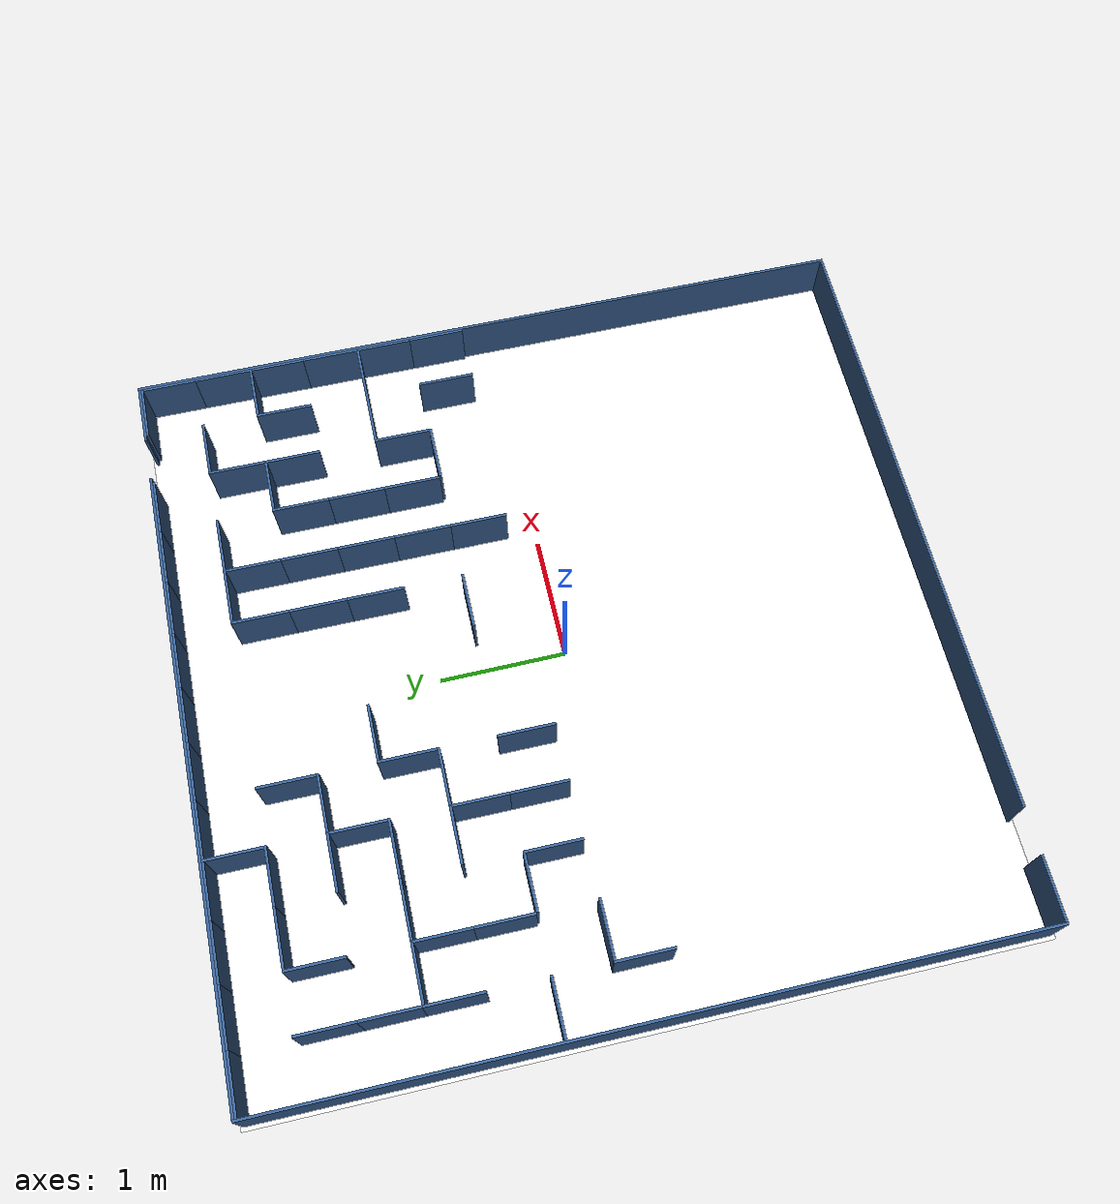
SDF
<sdf version="1.8">
 <world name="maze_world">
  <include><uri>https://fuel.gazebosim.org/1.0/OpenRobotics/models/Sun</uri></include>
  <model name="white_floor">
   <static>true</static>
   <link name="floor_link">
    <collision name="collision">
     <geometry><plane><normal>0 0 1</normal><size>5.95 5.95</size></plane></geometry>
    </collision>
    <visual name="visual">
     <geometry><plane><normal>0 0 1</normal><size>5.95 5.95</size></plane></geometry>
     <material>
      <ambient>0.92 0.92 0.9 1</ambient>
      <diffuse>0.95 0.95 0.93 1</diffuse>
      <specular>0.05 0.05 0.05 1</specular>
     </material>
    </visual>
   </link>
  </model>
  <model name="wall_outer_north_left">
   <static>true</static>
   <link name="link">
    <pose>-0.4275 2.935 0.2 0 0 0</pose>
    <collision name="collision"><geometry><box><size>4.995 0.04 0.4</size></box></geometry></collision>
    <visual name="visual">
     <geometry><box><size>4.995 0.02 0.4</size></box></geometry>
     <material>
      <ambient>0.18 0.32 0.5 1</ambient>
      <diffuse>0.22 0.38 0.58 1</diffuse>
      <specular>0.15 0.15 0.15 1</specular>
     </material>
    </visual>
   </link>
  </model>
  <model name="wall_outer_north_right">
   <static>true</static>
   <link name="link">
    <pose>2.6775 2.935 0.2 0 0 0</pose>
    <collision name="collision"><geometry><box><size>0.495 0.04 0.4</size></box></geometry></collision>
    <visual name="visual">
     <geometry><box><size>0.495 0.02 0.4</size></box></geometry>
     <material>
      <ambient>0.18 0.32 0.5 1</ambient>
      <diffuse>0.22 0.38 0.58 1</diffuse>
      <specular>0.15 0.15 0.15 1</specular>
     </material>
    </visual>
   </link>
  </model>
  <model name="wall_outer_south_left">
   <static>true</static>
   <link name="link">
    <pose>-2.6775 -2.935 0.2 0 0 0</pose>
    <collision name="collision"><geometry><box><size>0.495 0.04 0.4</size></box></geometry></collision>
    <visual name="visual">
     <geometry><box><size>0.495 0.02 0.4</size></box></geometry>
     <material>
      <ambient>0.18 0.32 0.5 1</ambient>
      <diffuse>0.22 0.38 0.58 1</diffuse>
      <specular>0.15 0.15 0.15 1</specular>
     </material>
    </visual>
   </link>
  </model>
  <model name="wall_outer_south_right">
   <static>true</static>
   <link name="link">
    <pose>0.4275 -2.935 0.2 0 0 0</pose>
    <collision name="collision"><geometry><box><size>4.995 0.04 0.4</size></box></geometry></collision>
    <visual name="visual">
     <geometry><box><size>4.995 0.02 0.4</size></box></geometry>
     <material>
      <ambient>0.18 0.32 0.5 1</ambient>
      <diffuse>0.22 0.38 0.58 1</diffuse>
      <specular>0.15 0.15 0.15 1</specular>
     </material>
    </visual>
   </link>
  </model>
  <model name="wall_outer_east">
   <static>true</static>
   <link name="link">
    <pose>2.935 0 0.2 0 0 0</pose>
    <collision name="collision">
     <geometry><box><size>0.04 5.890000000000001 0.4</size></box></geometry>
    </collision>
    <visual name="visual">
     <geometry><box><size>0.02 5.890000000000001 0.4</size></box></geometry>
     <material>
      <ambient>0.18 0.32 0.5 1</ambient>
      <diffuse>0.22 0.38 0.58 1</diffuse>
      <specular>0.15 0.15 0.15 1</specular>
     </material>
    </visual>
   </link>
  </model>
  <model name="wall_outer_west">
   <static>true</static>
   <link name="link">
    <pose>-2.935 0 0.2 0 0 0</pose>
    <collision name="collision">
     <geometry><box><size>0.04 5.890000000000001 0.4</size></box></geometry>
    </collision>
    <visual name="visual">
     <geometry><box><size>0.02 5.890000000000001 0.4</size></box></geometry>
     <material>
      <ambient>0.18 0.32 0.5 1</ambient>
      <diffuse>0.22 0.38 0.58 1</diffuse>
      <specular>0.15 0.15 0.15 1</specular>
     </material>
    </visual>
   </link>
  </model>
  <model name="wall_h_0_0">
   <static>true</static>
   <link name="link">
    <pose>-2.7 2.9150000000000005 0.2 0 0 0</pose>
    <collision name="collision"><geometry><box><size>0.45 0.04 0.4</size></box></geometry></collision>
    <visual name="visual">
     <geometry><box><size>0.45 0.02 0.4</size></box></geometry>
     <material>
      <ambient>0.18 0.32 0.5 1</ambient>
      <diffuse>0.22 0.38 0.58 1</diffuse>
      <specular>0.15 0.15 0.15 1</specular>
     </material>
    </visual>
   </link>
  </model>
  <model name="wall_h_0_1">
   <static>true</static>
   <link name="link">
    <pose>-2.25 2.9150000000000005 0.2 0 0 0</pose>
    <collision name="collision"><geometry><box><size>0.45 0.04 0.4</size></box></geometry></collision>
    <visual name="visual">
     <geometry><box><size>0.45 0.02 0.4</size></box></geometry>
     <material>
      <ambient>0.18 0.32 0.5 1</ambient>
      <diffuse>0.22 0.38 0.58 1</diffuse>
      <specular>0.15 0.15 0.15 1</specular>
     </material>
    </visual>
   </link>
  </model>
  <model name="wall_h_0_2">
   <static>true</static>
   <link name="link">
    <pose>-1.8000000000000003 2.9150000000000005 0.2 0 0 0</pose>
    <collision name="collision"><geometry><box><size>0.45 0.04 0.4</size></box></geometry></collision>
    <visual name="visual">
     <geometry><box><size>0.45 0.02 0.4</size></box></geometry>
     <material>
      <ambient>0.18 0.32 0.5 1</ambient>
      <diffuse>0.22 0.38 0.58 1</diffuse>
      <specular>0.15 0.15 0.15 1</specular>
     </material>
    </visual>
   </link>
  </model>
  <model name="wall_h_0_3">
   <static>true</static>
   <link name="link">
    <pose>-1.3500000000000003 2.9150000000000005 0.2 0 0 0</pose>
    <collision name="collision"><geometry><box><size>0.45 0.04 0.4</size></box></geometry></collision>
    <visual name="visual">
     <geometry><box><size>0.45 0.02 0.4</size></box></geometry>
     <material>
      <ambient>0.18 0.32 0.5 1</ambient>
      <diffuse>0.22 0.38 0.58 1</diffuse>
      <specular>0.15 0.15 0.15 1</specular>
     </material>
    </visual>
   </link>
  </model>
  <model name="wall_v_0_3">
   <static>true</static>
   <link name="link">
    <pose>-1.1350000000000002 2.7 0.2 0 0 0</pose>
    <collision name="collision"><geometry><box><size>0.04 0.45 0.4</size></box></geometry></collision>
    <visual name="visual">
     <geometry><box><size>0.02 0.45 0.4</size></box></geometry>
     <material>
      <ambient>0.18 0.32 0.5 1</ambient>
      <diffuse>0.22 0.38 0.58 1</diffuse>
      <specular>0.15 0.15 0.15 1</specular>
     </material>
    </visual>
   </link>
  </model>
  <model name="wall_h_0_4">
   <static>true</static>
   <link name="link">
    <pose>-0.9000000000000004 2.9150000000000005 0.2 0 0 0</pose>
    <collision name="collision"><geometry><box><size>0.45 0.04 0.4</size></box></geometry></collision>
    <visual name="visual">
     <geometry><box><size>0.45 0.02 0.4</size></box></geometry>
     <material>
      <ambient>0.18 0.32 0.5 1</ambient>
      <diffuse>0.22 0.38 0.58 1</diffuse>
      <specular>0.15 0.15 0.15 1</specular>
     </material>
    </visual>
   </link>
  </model>
  <model name="wall_h_0_5">
   <static>true</static>
   <link name="link">
    <pose>-0.4500000000000002 2.9150000000000005 0.2 0 0 0</pose>
    <collision name="collision"><geometry><box><size>0.45 0.04 0.4</size></box></geometry></collision>
    <visual name="visual">
     <geometry><box><size>0.45 0.02 0.4</size></box></geometry>
     <material>
      <ambient>0.18 0.32 0.5 1</ambient>
      <diffuse>0.22 0.38 0.58 1</diffuse>
      <specular>0.15 0.15 0.15 1</specular>
     </material>
    </visual>
   </link>
  </model>
  <model name="wall_h_0_6">
   <static>true</static>
   <link name="link">
    <pose>0.0 2.9150000000000005 0.2 0 0 0</pose>
    <collision name="collision"><geometry><box><size>0.45 0.04 0.4</size></box></geometry></collision>
    <visual name="visual">
     <geometry><box><size>0.45 0.02 0.4</size></box></geometry>
     <material>
      <ambient>0.18 0.32 0.5 1</ambient>
      <diffuse>0.22 0.38 0.58 1</diffuse>
      <specular>0.15 0.15 0.15 1</specular>
     </material>
    </visual>
   </link>
  </model>
  <model name="wall_h_0_7">
   <static>true</static>
   <link name="link">
    <pose>0.44999999999999973 2.9150000000000005 0.2 0 0 0</pose>
    <collision name="collision"><geometry><box><size>0.45 0.04 0.4</size></box></geometry></collision>
    <visual name="visual">
     <geometry><box><size>0.45 0.02 0.4</size></box></geometry>
     <material>
      <ambient>0.18 0.32 0.5 1</ambient>
      <diffuse>0.22 0.38 0.58 1</diffuse>
      <specular>0.15 0.15 0.15 1</specular>
     </material>
    </visual>
   </link>
  </model>
  <model name="wall_h_0_8">
   <static>true</static>
   <link name="link">
    <pose>0.8999999999999999 2.9150000000000005 0.2 0 0 0</pose>
    <collision name="collision"><geometry><box><size>0.45 0.04 0.4</size></box></geometry></collision>
    <visual name="visual">
     <geometry><box><size>0.45 0.02 0.4</size></box></geometry>
     <material>
      <ambient>0.18 0.32 0.5 1</ambient>
      <diffuse>0.22 0.38 0.58 1</diffuse>
      <specular>0.15 0.15 0.15 1</specular>
     </material>
    </visual>
   </link>
  </model>
  <model name="wall_h_0_9">
   <static>true</static>
   <link name="link">
    <pose>1.35 2.9150000000000005 0.2 0 0 0</pose>
    <collision name="collision"><geometry><box><size>0.45 0.04 0.4</size></box></geometry></collision>
    <visual name="visual">
     <geometry><box><size>0.45 0.02 0.4</size></box></geometry>
     <material>
      <ambient>0.18 0.32 0.5 1</ambient>
      <diffuse>0.22 0.38 0.58 1</diffuse>
      <specular>0.15 0.15 0.15 1</specular>
     </material>
    </visual>
   </link>
  </model>
  <model name="wall_h_0_10">
   <static>true</static>
   <link name="link">
    <pose>1.8000000000000003 2.9150000000000005 0.2 0 0 0</pose>
    <collision name="collision"><geometry><box><size>0.45 0.04 0.4</size></box></geometry></collision>
    <visual name="visual">
     <geometry><box><size>0.45 0.02 0.4</size></box></geometry>
     <material>
      <ambient>0.18 0.32 0.5 1</ambient>
      <diffuse>0.22 0.38 0.58 1</diffuse>
      <specular>0.15 0.15 0.15 1</specular>
     </material>
    </visual>
   </link>
  </model>
  <model name="wall_h_0_12">
   <static>true</static>
   <link name="link">
    <pose>2.6999999999999997 2.9150000000000005 0.2 0 0 0</pose>
    <collision name="collision"><geometry><box><size>0.45 0.04 0.4</size></box></geometry></collision>
    <visual name="visual">
     <geometry><box><size>0.45 0.02 0.4</size></box></geometry>
     <material>
      <ambient>0.18 0.32 0.5 1</ambient>
      <diffuse>0.22 0.38 0.58 1</diffuse>
      <specular>0.15 0.15 0.15 1</specular>
     </material>
    </visual>
   </link>
  </model>
  <model name="wall_v_0_12">
   <static>true</static>
   <link name="link">
    <pose>2.915 2.7 0.2 0 0 0</pose>
    <collision name="collision"><geometry><box><size>0.04 0.45 0.4</size></box></geometry></collision>
    <visual name="visual">
     <geometry><box><size>0.02 0.45 0.4</size></box></geometry>
     <material>
      <ambient>0.18 0.32 0.5 1</ambient>
      <diffuse>0.22 0.38 0.58 1</diffuse>
      <specular>0.15 0.15 0.15 1</specular>
     </material>
    </visual>
   </link>
  </model>
  <model name="wall_v_1_0">
   <static>true</static>
   <link name="link">
    <pose>-2.485 2.25 0.2 0 0 0</pose>
    <collision name="collision"><geometry><box><size>0.04 0.45 0.4</size></box></geometry></collision>
    <visual name="visual">
     <geometry><box><size>0.02 0.45 0.4</size></box></geometry>
     <material>
      <ambient>0.18 0.32 0.5 1</ambient>
      <diffuse>0.22 0.38 0.58 1</diffuse>
      <specular>0.15 0.15 0.15 1</specular>
     </material>
    </visual>
   </link>
  </model>
  <model name="wall_v_1_1">
   <static>true</static>
   <link name="link">
    <pose>-2.0349999999999997 2.25 0.2 0 0 0</pose>
    <collision name="collision"><geometry><box><size>0.04 0.45 0.4</size></box></geometry></collision>
    <visual name="visual">
     <geometry><box><size>0.02 0.45 0.4</size></box></geometry>
     <material>
      <ambient>0.18 0.32 0.5 1</ambient>
      <diffuse>0.22 0.38 0.58 1</diffuse>
      <specular>0.15 0.15 0.15 1</specular>
     </material>
    </visual>
   </link>
  </model>
  <model name="wall_h_1_2">
   <static>true</static>
   <link name="link">
    <pose>-1.8000000000000003 2.4650000000000003 0.2 0 0 0</pose>
    <collision name="collision"><geometry><box><size>0.45 0.04 0.4</size></box></geometry></collision>
    <visual name="visual">
     <geometry><box><size>0.45 0.02 0.4</size></box></geometry>
     <material>
      <ambient>0.18 0.32 0.5 1</ambient>
      <diffuse>0.22 0.38 0.58 1</diffuse>
      <specular>0.15 0.15 0.15 1</specular>
     </material>
    </visual>
   </link>
  </model>
  <model name="wall_h_1_3">
   <static>true</static>
   <link name="link">
    <pose>-1.3500000000000003 2.4650000000000003 0.2 0 0 0</pose>
    <collision name="collision"><geometry><box><size>0.45 0.04 0.4</size></box></geometry></collision>
    <visual name="visual">
     <geometry><box><size>0.45 0.02 0.4</size></box></geometry>
     <material>
      <ambient>0.18 0.32 0.5 1</ambient>
      <diffuse>0.22 0.38 0.58 1</diffuse>
      <specular>0.15 0.15 0.15 1</specular>
     </material>
    </visual>
   </link>
  </model>
  <model name="wall_v_1_4">
   <static>true</static>
   <link name="link">
    <pose>-0.6850000000000004 2.25 0.2 0 0 0</pose>
    <collision name="collision"><geometry><box><size>0.04 0.45 0.4</size></box></geometry></collision>
    <visual name="visual">
     <geometry><box><size>0.02 0.45 0.4</size></box></geometry>
     <material>
      <ambient>0.18 0.32 0.5 1</ambient>
      <diffuse>0.22 0.38 0.58 1</diffuse>
      <specular>0.15 0.15 0.15 1</specular>
     </material>
    </visual>
   </link>
  </model>
  <model name="wall_v_1_7">
   <static>true</static>
   <link name="link">
    <pose>0.6649999999999997 2.25 0.2 0 0 0</pose>
    <collision name="collision"><geometry><box><size>0.04 0.45 0.4</size></box></geometry></collision>
    <visual name="visual">
     <geometry><box><size>0.02 0.45 0.4</size></box></geometry>
     <material>
      <ambient>0.18 0.32 0.5 1</ambient>
      <diffuse>0.22 0.38 0.58 1</diffuse>
      <specular>0.15 0.15 0.15 1</specular>
     </material>
    </visual>
   </link>
  </model>
  <model name="wall_h_1_8">
   <static>true</static>
   <link name="link">
    <pose>0.8999999999999999 2.4650000000000003 0.2 0 0 0</pose>
    <collision name="collision"><geometry><box><size>0.45 0.04 0.4</size></box></geometry></collision>
    <visual name="visual">
     <geometry><box><size>0.45 0.02 0.4</size></box></geometry>
     <material>
      <ambient>0.18 0.32 0.5 1</ambient>
      <diffuse>0.22 0.38 0.58 1</diffuse>
      <specular>0.15 0.15 0.15 1</specular>
     </material>
    </visual>
   </link>
  </model>
  <model name="wall_v_1_8">
   <static>true</static>
   <link name="link">
    <pose>1.115 2.25 0.2 0 0 0</pose>
    <collision name="collision"><geometry><box><size>0.04 0.45 0.4</size></box></geometry></collision>
    <visual name="visual">
     <geometry><box><size>0.02 0.45 0.4</size></box></geometry>
     <material>
      <ambient>0.18 0.32 0.5 1</ambient>
      <diffuse>0.22 0.38 0.58 1</diffuse>
      <specular>0.15 0.15 0.15 1</specular>
     </material>
    </visual>
   </link>
  </model>
  <model name="wall_h_1_9">
   <static>true</static>
   <link name="link">
    <pose>1.35 2.4650000000000003 0.2 0 0 0</pose>
    <collision name="collision"><geometry><box><size>0.45 0.04 0.4</size></box></geometry></collision>
    <visual name="visual">
     <geometry><box><size>0.45 0.02 0.4</size></box></geometry>
     <material>
      <ambient>0.18 0.32 0.5 1</ambient>
      <diffuse>0.22 0.38 0.58 1</diffuse>
      <specular>0.15 0.15 0.15 1</specular>
     </material>
    </visual>
   </link>
  </model>
  <model name="wall_v_1_10">
   <static>true</static>
   <link name="link">
    <pose>2.0150000000000006 2.25 0.2 0 0 0</pose>
    <collision name="collision"><geometry><box><size>0.04 0.45 0.4</size></box></geometry></collision>
    <visual name="visual">
     <geometry><box><size>0.02 0.45 0.4</size></box></geometry>
     <material>
      <ambient>0.18 0.32 0.5 1</ambient>
      <diffuse>0.22 0.38 0.58 1</diffuse>
      <specular>0.15 0.15 0.15 1</specular>
     </material>
    </visual>
   </link>
  </model>
  <model name="wall_h_1_11">
   <static>true</static>
   <link name="link">
    <pose>2.2499999999999996 2.4650000000000003 0.2 0 0 0</pose>
    <collision name="collision"><geometry><box><size>0.45 0.04 0.4</size></box></geometry></collision>
    <visual name="visual">
     <geometry><box><size>0.45 0.02 0.4</size></box></geometry>
     <material>
      <ambient>0.18 0.32 0.5 1</ambient>
      <diffuse>0.22 0.38 0.58 1</diffuse>
      <specular>0.15 0.15 0.15 1</specular>
     </material>
    </visual>
   </link>
  </model>
  <model name="wall_v_1_12">
   <static>true</static>
   <link name="link">
    <pose>2.915 2.25 0.2 0 0 0</pose>
    <collision name="collision"><geometry><box><size>0.04 0.45 0.4</size></box></geometry></collision>
    <visual name="visual">
     <geometry><box><size>0.02 0.45 0.4</size></box></geometry>
     <material>
      <ambient>0.18 0.32 0.5 1</ambient>
      <diffuse>0.22 0.38 0.58 1</diffuse>
      <specular>0.15 0.15 0.15 1</specular>
     </material>
    </visual>
   </link>
  </model>
  <model name="wall_v_2_0">
   <static>true</static>
   <link name="link">
    <pose>-2.485 1.8000000000000003 0.2 0 0 0</pose>
    <collision name="collision"><geometry><box><size>0.04 0.45 0.4</size></box></geometry></collision>
    <visual name="visual">
     <geometry><box><size>0.02 0.45 0.4</size></box></geometry>
     <material>
      <ambient>0.18 0.32 0.5 1</ambient>
      <diffuse>0.22 0.38 0.58 1</diffuse>
      <specular>0.15 0.15 0.15 1</specular>
     </material>
    </visual>
   </link>
  </model>
  <model name="wall_h_2_3">
   <static>true</static>
   <link name="link">
    <pose>-1.3500000000000003 2.0150000000000006 0.2 0 0 0</pose>
    <collision name="collision"><geometry><box><size>0.45 0.04 0.4</size></box></geometry></collision>
    <visual name="visual">
     <geometry><box><size>0.45 0.02 0.4</size></box></geometry>
     <material>
      <ambient>0.18 0.32 0.5 1</ambient>
      <diffuse>0.22 0.38 0.58 1</diffuse>
      <specular>0.15 0.15 0.15 1</specular>
     </material>
    </visual>
   </link>
  </model>
  <model name="wall_v_2_3">
   <static>true</static>
   <link name="link">
    <pose>-1.1350000000000002 1.8000000000000003 0.2 0 0 0</pose>
    <collision name="collision"><geometry><box><size>0.04 0.45 0.4</size></box></geometry></collision>
    <visual name="visual">
     <geometry><box><size>0.02 0.45 0.4</size></box></geometry>
     <material>
      <ambient>0.18 0.32 0.5 1</ambient>
      <diffuse>0.22 0.38 0.58 1</diffuse>
      <specular>0.15 0.15 0.15 1</specular>
     </material>
    </visual>
   </link>
  </model>
  <model name="wall_h_2_4">
   <static>true</static>
   <link name="link">
    <pose>-0.9000000000000004 2.0150000000000006 0.2 0 0 0</pose>
    <collision name="collision"><geometry><box><size>0.45 0.04 0.4</size></box></geometry></collision>
    <visual name="visual">
     <geometry><box><size>0.45 0.02 0.4</size></box></geometry>
     <material>
      <ambient>0.18 0.32 0.5 1</ambient>
      <diffuse>0.22 0.38 0.58 1</diffuse>
      <specular>0.15 0.15 0.15 1</specular>
     </material>
    </visual>
   </link>
  </model>
  <model name="wall_v_2_7">
   <static>true</static>
   <link name="link">
    <pose>0.6649999999999997 1.8000000000000003 0.2 0 0 0</pose>
    <collision name="collision"><geometry><box><size>0.04 0.45 0.4</size></box></geometry></collision>
    <visual name="visual">
     <geometry><box><size>0.02 0.45 0.4</size></box></geometry>
     <material>
      <ambient>0.18 0.32 0.5 1</ambient>
      <diffuse>0.22 0.38 0.58 1</diffuse>
      <specular>0.15 0.15 0.15 1</specular>
     </material>
    </visual>
   </link>
  </model>
  <model name="wall_v_2_8">
   <static>true</static>
   <link name="link">
    <pose>1.115 1.8000000000000003 0.2 0 0 0</pose>
    <collision name="collision"><geometry><box><size>0.04 0.45 0.4</size></box></geometry></collision>
    <visual name="visual">
     <geometry><box><size>0.02 0.45 0.4</size></box></geometry>
     <material>
      <ambient>0.18 0.32 0.5 1</ambient>
      <diffuse>0.22 0.38 0.58 1</diffuse>
      <specular>0.15 0.15 0.15 1</specular>
     </material>
    </visual>
   </link>
  </model>
  <model name="wall_v_2_9">
   <static>true</static>
   <link name="link">
    <pose>1.5650000000000002 1.8000000000000003 0.2 0 0 0</pose>
    <collision name="collision"><geometry><box><size>0.04 0.45 0.4</size></box></geometry></collision>
    <visual name="visual">
     <geometry><box><size>0.02 0.45 0.4</size></box></geometry>
     <material>
      <ambient>0.18 0.32 0.5 1</ambient>
      <diffuse>0.22 0.38 0.58 1</diffuse>
      <specular>0.15 0.15 0.15 1</specular>
     </material>
    </visual>
   </link>
  </model>
  <model name="wall_h_2_10">
   <static>true</static>
   <link name="link">
    <pose>1.8000000000000003 2.0150000000000006 0.2 0 0 0</pose>
    <collision name="collision"><geometry><box><size>0.45 0.04 0.4</size></box></geometry></collision>
    <visual name="visual">
     <geometry><box><size>0.45 0.02 0.4</size></box></geometry>
     <material>
      <ambient>0.18 0.32 0.5 1</ambient>
      <diffuse>0.22 0.38 0.58 1</diffuse>
      <specular>0.15 0.15 0.15 1</specular>
     </material>
    </visual>
   </link>
  </model>
  <model name="wall_v_2_10">
   <static>true</static>
   <link name="link">
    <pose>2.0150000000000006 1.8000000000000003 0.2 0 0 0</pose>
    <collision name="collision"><geometry><box><size>0.04 0.45 0.4</size></box></geometry></collision>
    <visual name="visual">
     <geometry><box><size>0.02 0.45 0.4</size></box></geometry>
     <material>
      <ambient>0.18 0.32 0.5 1</ambient>
      <diffuse>0.22 0.38 0.58 1</diffuse>
      <specular>0.15 0.15 0.15 1</specular>
     </material>
    </visual>
   </link>
  </model>
  <model name="wall_v_2_11">
   <static>true</static>
   <link name="link">
    <pose>2.465 1.8000000000000003 0.2 0 0 0</pose>
    <collision name="collision"><geometry><box><size>0.04 0.45 0.4</size></box></geometry></collision>
    <visual name="visual">
     <geometry><box><size>0.02 0.45 0.4</size></box></geometry>
     <material>
      <ambient>0.18 0.32 0.5 1</ambient>
      <diffuse>0.22 0.38 0.58 1</diffuse>
      <specular>0.15 0.15 0.15 1</specular>
     </material>
    </visual>
   </link>
  </model>
  <model name="wall_h_2_12">
   <static>true</static>
   <link name="link">
    <pose>2.6999999999999997 2.0150000000000006 0.2 0 0 0</pose>
    <collision name="collision"><geometry><box><size>0.45 0.04 0.4</size></box></geometry></collision>
    <visual name="visual">
     <geometry><box><size>0.45 0.02 0.4</size></box></geometry>
     <material>
      <ambient>0.18 0.32 0.5 1</ambient>
      <diffuse>0.22 0.38 0.58 1</diffuse>
      <specular>0.15 0.15 0.15 1</specular>
     </material>
    </visual>
   </link>
  </model>
  <model name="wall_v_2_12">
   <static>true</static>
   <link name="link">
    <pose>2.915 1.8000000000000003 0.2 0 0 0</pose>
    <collision name="collision"><geometry><box><size>0.04 0.45 0.4</size></box></geometry></collision>
    <visual name="visual">
     <geometry><box><size>0.02 0.45 0.4</size></box></geometry>
     <material>
      <ambient>0.18 0.32 0.5 1</ambient>
      <diffuse>0.22 0.38 0.58 1</diffuse>
      <specular>0.15 0.15 0.15 1</specular>
     </material>
    </visual>
   </link>
  </model>
  <model name="wall_v_3_0">
   <static>true</static>
   <link name="link">
    <pose>-2.485 1.3500000000000003 0.2 0 0 0</pose>
    <collision name="collision"><geometry><box><size>0.04 0.45 0.4</size></box></geometry></collision>
    <visual name="visual">
     <geometry><box><size>0.02 0.45 0.4</size></box></geometry>
     <material>
      <ambient>0.18 0.32 0.5 1</ambient>
      <diffuse>0.22 0.38 0.58 1</diffuse>
      <specular>0.15 0.15 0.15 1</specular>
     </material>
    </visual>
   </link>
  </model>
  <model name="wall_h_3_1">
   <static>true</static>
   <link name="link">
    <pose>-2.25 1.5650000000000004 0.2 0 0 0</pose>
    <collision name="collision"><geometry><box><size>0.45 0.04 0.4</size></box></geometry></collision>
    <visual name="visual">
     <geometry><box><size>0.45 0.02 0.4</size></box></geometry>
     <material>
      <ambient>0.18 0.32 0.5 1</ambient>
      <diffuse>0.22 0.38 0.58 1</diffuse>
      <specular>0.15 0.15 0.15 1</specular>
     </material>
    </visual>
   </link>
  </model>
  <model name="wall_v_3_1">
   <static>true</static>
   <link name="link">
    <pose>-2.0349999999999997 1.3500000000000003 0.2 0 0 0</pose>
    <collision name="collision"><geometry><box><size>0.04 0.45 0.4</size></box></geometry></collision>
    <visual name="visual">
     <geometry><box><size>0.02 0.45 0.4</size></box></geometry>
     <material>
      <ambient>0.18 0.32 0.5 1</ambient>
      <diffuse>0.22 0.38 0.58 1</diffuse>
      <specular>0.15 0.15 0.15 1</specular>
     </material>
    </visual>
   </link>
  </model>
  <model name="wall_h_3_2">
   <static>true</static>
   <link name="link">
    <pose>-1.8000000000000003 1.5650000000000004 0.2 0 0 0</pose>
    <collision name="collision"><geometry><box><size>0.45 0.04 0.4</size></box></geometry></collision>
    <visual name="visual">
     <geometry><box><size>0.45 0.02 0.4</size></box></geometry>
     <material>
      <ambient>0.18 0.32 0.5 1</ambient>
      <diffuse>0.22 0.38 0.58 1</diffuse>
      <specular>0.15 0.15 0.15 1</specular>
     </material>
    </visual>
   </link>
  </model>
  <model name="wall_h_3_3">
   <static>true</static>
   <link name="link">
    <pose>-1.3500000000000003 1.5650000000000004 0.2 0 0 0</pose>
    <collision name="collision"><geometry><box><size>0.45 0.04 0.4</size></box></geometry></collision>
    <visual name="visual">
     <geometry><box><size>0.45 0.02 0.4</size></box></geometry>
     <material>
      <ambient>0.18 0.32 0.5 1</ambient>
      <diffuse>0.22 0.38 0.58 1</diffuse>
      <specular>0.15 0.15 0.15 1</specular>
     </material>
    </visual>
   </link>
  </model>
  <model name="wall_v_3_4">
   <static>true</static>
   <link name="link">
    <pose>-0.6850000000000004 1.3500000000000003 0.2 0 0 0</pose>
    <collision name="collision"><geometry><box><size>0.04 0.45 0.4</size></box></geometry></collision>
    <visual name="visual">
     <geometry><box><size>0.02 0.45 0.4</size></box></geometry>
     <material>
      <ambient>0.18 0.32 0.5 1</ambient>
      <diffuse>0.22 0.38 0.58 1</diffuse>
      <specular>0.15 0.15 0.15 1</specular>
     </material>
    </visual>
   </link>
  </model>
  <model name="wall_h_3_5">
   <static>true</static>
   <link name="link">
    <pose>-0.4500000000000002 1.5650000000000004 0.2 0 0 0</pose>
    <collision name="collision"><geometry><box><size>0.45 0.04 0.4</size></box></geometry></collision>
    <visual name="visual">
     <geometry><box><size>0.45 0.02 0.4</size></box></geometry>
     <material>
      <ambient>0.18 0.32 0.5 1</ambient>
      <diffuse>0.22 0.38 0.58 1</diffuse>
      <specular>0.15 0.15 0.15 1</specular>
     </material>
    </visual>
   </link>
  </model>
  <model name="wall_v_3_7">
   <static>true</static>
   <link name="link">
    <pose>0.6649999999999997 1.3500000000000003 0.2 0 0 0</pose>
    <collision name="collision"><geometry><box><size>0.04 0.45 0.4</size></box></geometry></collision>
    <visual name="visual">
     <geometry><box><size>0.02 0.45 0.4</size></box></geometry>
     <material>
      <ambient>0.18 0.32 0.5 1</ambient>
      <diffuse>0.22 0.38 0.58 1</diffuse>
      <specular>0.15 0.15 0.15 1</specular>
     </material>
    </visual>
   </link>
  </model>
  <model name="wall_v_3_8">
   <static>true</static>
   <link name="link">
    <pose>1.115 1.3500000000000003 0.2 0 0 0</pose>
    <collision name="collision"><geometry><box><size>0.04 0.45 0.4</size></box></geometry></collision>
    <visual name="visual">
     <geometry><box><size>0.02 0.45 0.4</size></box></geometry>
     <material>
      <ambient>0.18 0.32 0.5 1</ambient>
      <diffuse>0.22 0.38 0.58 1</diffuse>
      <specular>0.15 0.15 0.15 1</specular>
     </material>
    </visual>
   </link>
  </model>
  <model name="wall_v_3_9">
   <static>true</static>
   <link name="link">
    <pose>1.5650000000000002 1.3500000000000003 0.2 0 0 0</pose>
    <collision name="collision"><geometry><box><size>0.04 0.45 0.4</size></box></geometry></collision>
    <visual name="visual">
     <geometry><box><size>0.02 0.45 0.4</size></box></geometry>
     <material>
      <ambient>0.18 0.32 0.5 1</ambient>
      <diffuse>0.22 0.38 0.58 1</diffuse>
      <specular>0.15 0.15 0.15 1</specular>
     </material>
    </visual>
   </link>
  </model>
  <model name="wall_v_3_12">
   <static>true</static>
   <link name="link">
    <pose>2.915 1.3500000000000003 0.2 0 0 0</pose>
    <collision name="collision"><geometry><box><size>0.04 0.45 0.4</size></box></geometry></collision>
    <visual name="visual">
     <geometry><box><size>0.02 0.45 0.4</size></box></geometry>
     <material>
      <ambient>0.18 0.32 0.5 1</ambient>
      <diffuse>0.22 0.38 0.58 1</diffuse>
      <specular>0.15 0.15 0.15 1</specular>
     </material>
    </visual>
   </link>
  </model>
  <model name="wall_v_4_1">
   <static>true</static>
   <link name="link">
    <pose>-2.0349999999999997 0.9000000000000004 0.2 0 0 0</pose>
    <collision name="collision"><geometry><box><size>0.04 0.45 0.4</size></box></geometry></collision>
    <visual name="visual">
     <geometry><box><size>0.02 0.45 0.4</size></box></geometry>
     <material>
      <ambient>0.18 0.32 0.5 1</ambient>
      <diffuse>0.22 0.38 0.58 1</diffuse>
      <specular>0.15 0.15 0.15 1</specular>
     </material>
    </visual>
   </link>
  </model>
  <model name="wall_h_4_3">
   <static>true</static>
   <link name="link">
    <pose>-1.3500000000000003 1.1150000000000004 0.2 0 0 0</pose>
    <collision name="collision"><geometry><box><size>0.45 0.04 0.4</size></box></geometry></collision>
    <visual name="visual">
     <geometry><box><size>0.45 0.02 0.4</size></box></geometry>
     <material>
      <ambient>0.18 0.32 0.5 1</ambient>
      <diffuse>0.22 0.38 0.58 1</diffuse>
      <specular>0.15 0.15 0.15 1</specular>
     </material>
    </visual>
   </link>
  </model>
  <model name="wall_v_4_3">
   <static>true</static>
   <link name="link">
    <pose>-1.1350000000000002 0.9000000000000004 0.2 0 0 0</pose>
    <collision name="collision"><geometry><box><size>0.04 0.45 0.4</size></box></geometry></collision>
    <visual name="visual">
     <geometry><box><size>0.02 0.45 0.4</size></box></geometry>
     <material>
      <ambient>0.18 0.32 0.5 1</ambient>
      <diffuse>0.22 0.38 0.58 1</diffuse>
      <specular>0.15 0.15 0.15 1</specular>
     </material>
    </visual>
   </link>
  </model>
  <model name="wall_h_4_4">
   <static>true</static>
   <link name="link">
    <pose>-0.9000000000000004 1.1150000000000004 0.2 0 0 0</pose>
    <collision name="collision"><geometry><box><size>0.45 0.04 0.4</size></box></geometry></collision>
    <visual name="visual">
     <geometry><box><size>0.45 0.02 0.4</size></box></geometry>
     <material>
      <ambient>0.18 0.32 0.5 1</ambient>
      <diffuse>0.22 0.38 0.58 1</diffuse>
      <specular>0.15 0.15 0.15 1</specular>
     </material>
    </visual>
   </link>
  </model>
  <model name="wall_v_4_8">
   <static>true</static>
   <link name="link">
    <pose>1.115 0.9000000000000004 0.2 0 0 0</pose>
    <collision name="collision"><geometry><box><size>0.04 0.45 0.4</size></box></geometry></collision>
    <visual name="visual">
     <geometry><box><size>0.02 0.45 0.4</size></box></geometry>
     <material>
      <ambient>0.18 0.32 0.5 1</ambient>
      <diffuse>0.22 0.38 0.58 1</diffuse>
      <specular>0.15 0.15 0.15 1</specular>
     </material>
    </visual>
   </link>
  </model>
  <model name="wall_v_4_9">
   <static>true</static>
   <link name="link">
    <pose>1.5650000000000002 0.9000000000000004 0.2 0 0 0</pose>
    <collision name="collision"><geometry><box><size>0.04 0.45 0.4</size></box></geometry></collision>
    <visual name="visual">
     <geometry><box><size>0.02 0.45 0.4</size></box></geometry>
     <material>
      <ambient>0.18 0.32 0.5 1</ambient>
      <diffuse>0.22 0.38 0.58 1</diffuse>
      <specular>0.15 0.15 0.15 1</specular>
     </material>
    </visual>
   </link>
  </model>
  <model name="wall_v_4_10">
   <static>true</static>
   <link name="link">
    <pose>2.0150000000000006 0.9000000000000004 0.2 0 0 0</pose>
    <collision name="collision"><geometry><box><size>0.04 0.45 0.4</size></box></geometry></collision>
    <visual name="visual">
     <geometry><box><size>0.02 0.45 0.4</size></box></geometry>
     <material>
      <ambient>0.18 0.32 0.5 1</ambient>
      <diffuse>0.22 0.38 0.58 1</diffuse>
      <specular>0.15 0.15 0.15 1</specular>
     </material>
    </visual>
   </link>
  </model>
  <model name="wall_h_4_11">
   <static>true</static>
   <link name="link">
    <pose>2.2499999999999996 1.1150000000000004 0.2 0 0 0</pose>
    <collision name="collision"><geometry><box><size>0.45 0.04 0.4</size></box></geometry></collision>
    <visual name="visual">
     <geometry><box><size>0.45 0.02 0.4</size></box></geometry>
     <material>
      <ambient>0.18 0.32 0.5 1</ambient>
      <diffuse>0.22 0.38 0.58 1</diffuse>
      <specular>0.15 0.15 0.15 1</specular>
     </material>
    </visual>
   </link>
  </model>
  <model name="wall_h_4_12">
   <static>true</static>
   <link name="link">
    <pose>2.6999999999999997 1.1150000000000004 0.2 0 0 0</pose>
    <collision name="collision"><geometry><box><size>0.45 0.04 0.4</size></box></geometry></collision>
    <visual name="visual">
     <geometry><box><size>0.45 0.02 0.4</size></box></geometry>
     <material>
      <ambient>0.18 0.32 0.5 1</ambient>
      <diffuse>0.22 0.38 0.58 1</diffuse>
      <specular>0.15 0.15 0.15 1</specular>
     </material>
    </visual>
   </link>
  </model>
  <model name="wall_v_4_12">
   <static>true</static>
   <link name="link">
    <pose>2.915 0.9000000000000004 0.2 0 0 0</pose>
    <collision name="collision"><geometry><box><size>0.04 0.45 0.4</size></box></geometry></collision>
    <visual name="visual">
     <geometry><box><size>0.02 0.45 0.4</size></box></geometry>
     <material>
      <ambient>0.18 0.32 0.5 1</ambient>
      <diffuse>0.22 0.38 0.58 1</diffuse>
      <specular>0.15 0.15 0.15 1</specular>
     </material>
    </visual>
   </link>
  </model>
  <model name="wall_h_5_0">
   <static>true</static>
   <link name="link">
    <pose>-2.7 0.6650000000000001 0.2 0 0 0</pose>
    <collision name="collision"><geometry><box><size>0.45 0.04 0.4</size></box></geometry></collision>
    <visual name="visual">
     <geometry><box><size>0.45 0.02 0.4</size></box></geometry>
     <material>
      <ambient>0.18 0.32 0.5 1</ambient>
      <diffuse>0.22 0.38 0.58 1</diffuse>
      <specular>0.15 0.15 0.15 1</specular>
     </material>
    </visual>
   </link>
  </model>
  <model name="wall_h_5_2">
   <static>true</static>
   <link name="link">
    <pose>-1.8000000000000003 0.6650000000000001 0.2 0 0 0</pose>
    <collision name="collision"><geometry><box><size>0.45 0.04 0.4</size></box></geometry></collision>
    <visual name="visual">
     <geometry><box><size>0.45 0.02 0.4</size></box></geometry>
     <material>
      <ambient>0.18 0.32 0.5 1</ambient>
      <diffuse>0.22 0.38 0.58 1</diffuse>
      <specular>0.15 0.15 0.15 1</specular>
     </material>
    </visual>
   </link>
  </model>
  <model name="wall_v_5_2">
   <static>true</static>
   <link name="link">
    <pose>-1.5850000000000002 0.4500000000000002 0.2 0 0 0</pose>
    <collision name="collision"><geometry><box><size>0.04 0.45 0.4</size></box></geometry></collision>
    <visual name="visual">
     <geometry><box><size>0.02 0.45 0.4</size></box></geometry>
     <material>
      <ambient>0.18 0.32 0.5 1</ambient>
      <diffuse>0.22 0.38 0.58 1</diffuse>
      <specular>0.15 0.15 0.15 1</specular>
     </material>
    </visual>
   </link>
  </model>
  <model name="wall_v_5_3">
   <static>true</static>
   <link name="link">
    <pose>-1.1350000000000002 0.4500000000000002 0.2 0 0 0</pose>
    <collision name="collision"><geometry><box><size>0.04 0.45 0.4</size></box></geometry></collision>
    <visual name="visual">
     <geometry><box><size>0.02 0.45 0.4</size></box></geometry>
     <material>
      <ambient>0.18 0.32 0.5 1</ambient>
      <diffuse>0.22 0.38 0.58 1</diffuse>
      <specular>0.15 0.15 0.15 1</specular>
     </material>
    </visual>
   </link>
  </model>
  <model name="wall_v_5_4">
   <static>true</static>
   <link name="link">
    <pose>-0.6850000000000004 0.4500000000000002 0.2 0 0 0</pose>
    <collision name="collision"><geometry><box><size>0.04 0.45 0.4</size></box></geometry></collision>
    <visual name="visual">
     <geometry><box><size>0.02 0.45 0.4</size></box></geometry>
     <material>
      <ambient>0.18 0.32 0.5 1</ambient>
      <diffuse>0.22 0.38 0.58 1</diffuse>
      <specular>0.15 0.15 0.15 1</specular>
     </material>
    </visual>
   </link>
  </model>
  <model name="wall_h_5_7">
   <static>true</static>
   <link name="link">
    <pose>0.44999999999999973 0.6650000000000001 0.2 0 0 0</pose>
    <collision name="collision"><geometry><box><size>0.45 0.04 0.4</size></box></geometry></collision>
    <visual name="visual">
     <geometry><box><size>0.45 0.02 0.4</size></box></geometry>
     <material>
      <ambient>0.18 0.32 0.5 1</ambient>
      <diffuse>0.22 0.38 0.58 1</diffuse>
      <specular>0.15 0.15 0.15 1</specular>
     </material>
    </visual>
   </link>
  </model>
  <model name="wall_v_5_8">
   <static>true</static>
   <link name="link">
    <pose>1.115 0.4500000000000002 0.2 0 0 0</pose>
    <collision name="collision"><geometry><box><size>0.04 0.45 0.4</size></box></geometry></collision>
    <visual name="visual">
     <geometry><box><size>0.02 0.45 0.4</size></box></geometry>
     <material>
      <ambient>0.18 0.32 0.5 1</ambient>
      <diffuse>0.22 0.38 0.58 1</diffuse>
      <specular>0.15 0.15 0.15 1</specular>
     </material>
    </visual>
   </link>
  </model>
  <model name="wall_h_5_10">
   <static>true</static>
   <link name="link">
    <pose>1.8000000000000003 0.6650000000000001 0.2 0 0 0</pose>
    <collision name="collision"><geometry><box><size>0.45 0.04 0.4</size></box></geometry></collision>
    <visual name="visual">
     <geometry><box><size>0.45 0.02 0.4</size></box></geometry>
     <material>
      <ambient>0.18 0.32 0.5 1</ambient>
      <diffuse>0.22 0.38 0.58 1</diffuse>
      <specular>0.15 0.15 0.15 1</specular>
     </material>
    </visual>
   </link>
  </model>
  <model name="wall_v_5_11">
   <static>true</static>
   <link name="link">
    <pose>2.465 0.4500000000000002 0.2 0 0 0</pose>
    <collision name="collision"><geometry><box><size>0.04 0.45 0.4</size></box></geometry></collision>
    <visual name="visual">
     <geometry><box><size>0.02 0.45 0.4</size></box></geometry>
     <material>
      <ambient>0.18 0.32 0.5 1</ambient>
      <diffuse>0.22 0.38 0.58 1</diffuse>
      <specular>0.15 0.15 0.15 1</specular>
     </material>
    </visual>
   </link>
  </model>
  <model name="wall_v_5_12">
   <static>true</static>
   <link name="link">
    <pose>2.915 0.4500000000000002 0.2 0 0 0</pose>
    <collision name="collision"><geometry><box><size>0.04 0.45 0.4</size></box></geometry></collision>
    <visual name="visual">
     <geometry><box><size>0.02 0.45 0.4</size></box></geometry>
     <material>
      <ambient>0.18 0.32 0.5 1</ambient>
      <diffuse>0.22 0.38 0.58 1</diffuse>
      <specular>0.15 0.15 0.15 1</specular>
     </material>
    </visual>
   </link>
  </model>
  <model name="wall_v_6_0">
   <static>true</static>
   <link name="link">
    <pose>-2.485 0.0 0.2 0 0 0</pose>
    <collision name="collision"><geometry><box><size>0.04 0.45 0.4</size></box></geometry></collision>
    <visual name="visual">
     <geometry><box><size>0.02 0.45 0.4</size></box></geometry>
     <material>
      <ambient>0.18 0.32 0.5 1</ambient>
      <diffuse>0.22 0.38 0.58 1</diffuse>
      <specular>0.15 0.15 0.15 1</specular>
     </material>
    </visual>
   </link>
  </model>
  <model name="wall_h_6_1">
   <static>true</static>
   <link name="link">
    <pose>-2.25 0.215 0.2 0 0 0</pose>
    <collision name="collision"><geometry><box><size>0.45 0.04 0.4</size></box></geometry></collision>
    <visual name="visual">
     <geometry><box><size>0.45 0.02 0.4</size></box></geometry>
     <material>
      <ambient>0.18 0.32 0.5 1</ambient>
      <diffuse>0.22 0.38 0.58 1</diffuse>
      <specular>0.15 0.15 0.15 1</specular>
     </material>
    </visual>
   </link>
  </model>
 </world>
</sdf>
